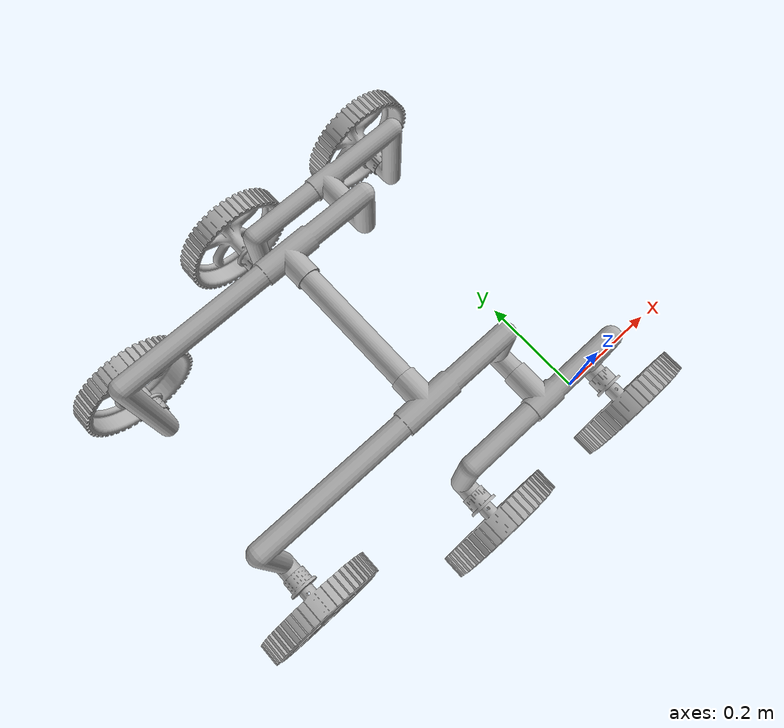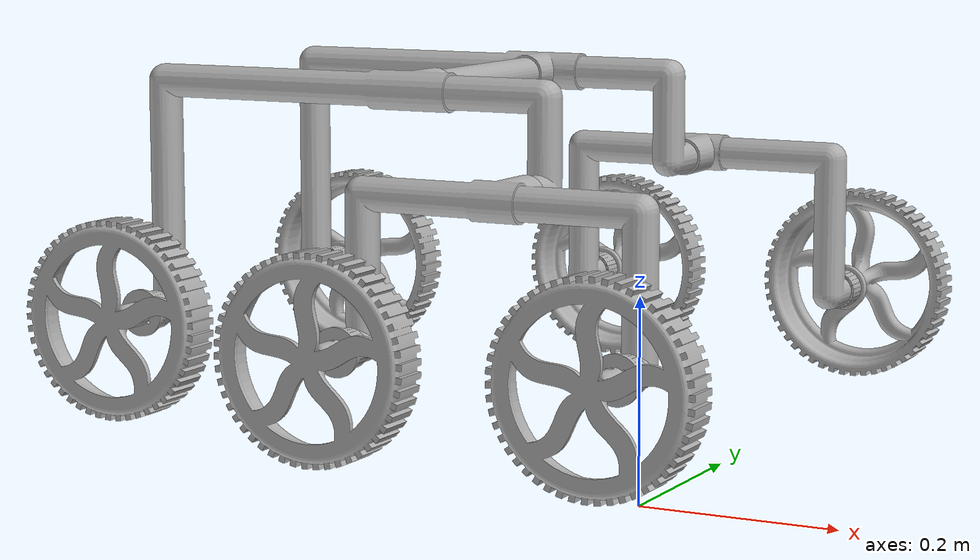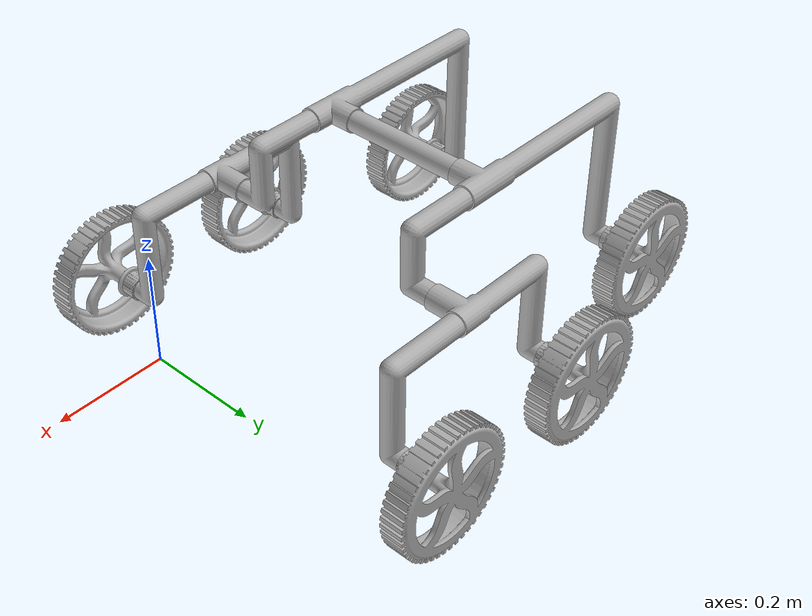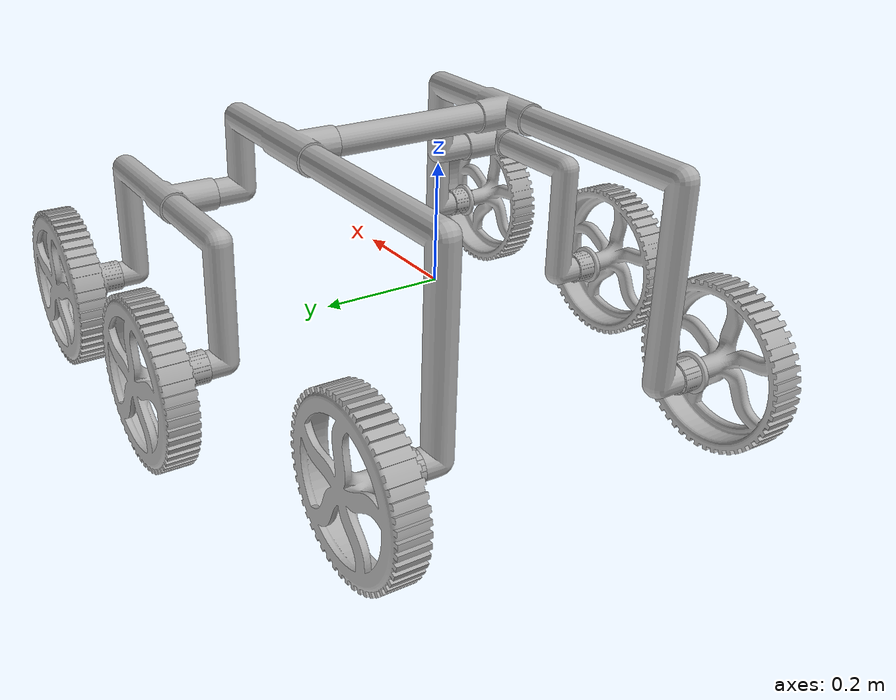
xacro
<?xml version="1.0" ?>
<robot name="rockerbogie-2" xmlns:xacro="http://www.ros.org/wiki/xacro">

<xacro:include filename="$(find rockerbogie-2_description)/urdf/materials.xacro" />
<xacro:include filename="$(find rockerbogie-2_description)/urdf/rockerbogie-2.trans" />
<xacro:include filename="$(find rockerbogie-2_description)/urdf/rockerbogie-2.gazebo" />
<link name="base_link">
  <inertial>
    <origin xyz="-0.3000000000000002 0.25000000000000017 0.37283900000000003" rpy="0 0 0"/>
    <mass value="1.5105170177541427"/>
    <inertia ixx="0.005151" iyy="0.000231" izz="0.005151" ixy="-0.0" iyz="0.0" ixz="-0.0"/>
  </inertial>
  <visual>
    <origin xyz="0 0 0" rpy="0 0 0"/>
    <geometry>
      <mesh filename="package://rockerbogie-2_description/meshes/base_link.stl" scale="0.001 0.001 0.001"/>
    </geometry>
    <material name="silver"/>
  </visual>
  <collision>
    <origin xyz="0 0 0" rpy="0 0 0"/>
    <geometry>
      <mesh filename="package://rockerbogie-2_description/meshes/base_link.stl" scale="0.001 0.001 0.001"/>
    </geometry>
  </collision>
</link>

<link name="Component3_1">
  <inertial>
    <origin xyz="-0.10755773674105329 -0.0509431809363807 -0.05038364965803355" rpy="0 0 0"/>
    <mass value="6.761143810780945"/>
    <inertia ixx="0.039352" iyy="0.245479" izz="0.207884" ixy="0.000261" iyz="-0.00115" ixz="-0.038842"/>
  </inertial>
  <visual>
    <origin xyz="0.3 -0.15 -0.372839" rpy="0 0 0"/>
    <geometry>
      <mesh filename="package://rockerbogie-2_description/meshes/Component3_1.stl" scale="0.001 0.001 0.001"/>
    </geometry>
    <material name="silver"/>
  </visual>
  <collision>
    <origin xyz="0.3 -0.15 -0.372839" rpy="0 0 0"/>
    <geometry>
      <mesh filename="package://rockerbogie-2_description/meshes/Component3_1.stl" scale="0.001 0.001 0.001"/>
    </geometry>
  </collision>
</link>

<link name="Component5_1">
  <inertial>
    <origin xyz="-0.10755774564451281 0.050943180848837144 -0.05038365391213556" rpy="0 0 0"/>
    <mass value="6.761143255231735"/>
    <inertia ixx="0.039352" iyy="0.245479" izz="0.207884" ixy="-0.000261" iyz="0.00115" ixz="-0.038842"/>
  </inertial>
  <visual>
    <origin xyz="0.3 -0.35 -0.372839" rpy="0 0 0"/>
    <geometry>
      <mesh filename="package://rockerbogie-2_description/meshes/Component5_1.stl" scale="0.001 0.001 0.001"/>
    </geometry>
    <material name="silver"/>
  </visual>
  <collision>
    <origin xyz="0.3 -0.35 -0.372839" rpy="0 0 0"/>
    <geometry>
      <mesh filename="package://rockerbogie-2_description/meshes/Component5_1.stl" scale="0.001 0.001 0.001"/>
    </geometry>
  </collision>
</link>

<link name="Component2_1">
  <inertial>
    <origin xyz="-8.481482183242406e-11 -0.060961453703470975 -0.0462653790905416" rpy="0 0 0"/>
    <mass value="5.234312053227132"/>
    <inertia ixx="0.018132" iyy="0.096288" izz="0.079777" ixy="-0.0" iyz="-0.001042" ixz="0.0"/>
  </inertial>
  <visual>
    <origin xyz="0.15 -0.06025 -0.279939" rpy="0 0 0"/>
    <geometry>
      <mesh filename="package://rockerbogie-2_description/meshes/Component2_1.stl" scale="0.001 0.001 0.001"/>
    </geometry>
    <material name="silver"/>
  </visual>
  <collision>
    <origin xyz="0.15 -0.06025 -0.279939" rpy="0 0 0"/>
    <geometry>
      <mesh filename="package://rockerbogie-2_description/meshes/Component2_1.stl" scale="0.001 0.001 0.001"/>
    </geometry>
  </collision>
</link>

<link name="Component4_1">
  <inertial>
    <origin xyz="0.0 0.06096145409995524 -0.046265384296076656" rpy="0 0 0"/>
    <mass value="5.23431144760391"/>
    <inertia ixx="0.018132" iyy="0.096288" izz="0.079777" ixy="0.0" iyz="0.001042" ixz="0.0"/>
  </inertial>
  <visual>
    <origin xyz="0.15 -0.43975 -0.279939" rpy="0 0 0"/>
    <geometry>
      <mesh filename="package://rockerbogie-2_description/meshes/Component4_1.stl" scale="0.001 0.001 0.001"/>
    </geometry>
    <material name="silver"/>
  </visual>
  <collision>
    <origin xyz="0.15 -0.43975 -0.279939" rpy="0 0 0"/>
    <geometry>
      <mesh filename="package://rockerbogie-2_description/meshes/Component4_1.stl" scale="0.001 0.001 0.001"/>
    </geometry>
  </collision>
</link>

<link name="wheel_initial_v1[1]_v2_1">
  <inertial>
    <origin xyz="2.965594800130589e-07 -0.043613044761228646 1.2825461553900297e-07" rpy="0 0 0"/>
    <mass value="3.397639562370722"/>
    <inertia ixx="0.013323" iyy="0.025608" izz="0.013323" ixy="0.0" iyz="0.0" ixz="0.0"/>
  </inertial>
  <visual>
    <origin xyz="0.0 0.054 -0.129939" rpy="0 0 0"/>
    <geometry>
      <mesh filename="package://rockerbogie-2_description/meshes/wheel_initial_v1[1]_v2_1.stl" scale="0.001 0.001 0.001"/>
    </geometry>
    <material name="silver"/>
  </visual>
  <collision>
    <origin xyz="0.0 0.054 -0.129939" rpy="0 0 0"/>
    <geometry>
      <mesh filename="package://rockerbogie-2_description/meshes/wheel_initial_v1[1]_v2_1.stl" scale="0.001 0.001 0.001"/>
    </geometry>
  </collision>
</link>

<link name="motor_holder2_v3[1]_v1_1">
  <inertial>
    <origin xyz="-1.4029074352933307e-15 -0.01805748319655863 0.0" rpy="0 0 0"/>
    <mass value="0.1300765489676125"/>
    <inertia ixx="3.4e-05" iyy="4.7e-05" izz="3.4e-05" ixy="-0.0" iyz="0.0" ixz="0.0"/>
  </inertial>
  <visual>
    <origin xyz="0.0 0.025 -0.129939" rpy="0 0 0"/>
    <geometry>
      <mesh filename="package://rockerbogie-2_description/meshes/motor_holder2_v3[1]_v1_1.stl" scale="0.001 0.001 0.001"/>
    </geometry>
    <material name="silver"/>
  </visual>
  <collision>
    <origin xyz="0.0 0.025 -0.129939" rpy="0 0 0"/>
    <geometry>
      <mesh filename="package://rockerbogie-2_description/meshes/motor_holder2_v3[1]_v1_1.stl" scale="0.001 0.001 0.001"/>
    </geometry>
  </collision>
</link>

<link name="motor_holder2_v3[1]_v1_3">
  <inertial>
    <origin xyz="-1.8318679906315083e-15 -0.018057483196557512 -2.7755575615628914e-17" rpy="0 0 0"/>
    <mass value="0.1300765489676125"/>
    <inertia ixx="3.4e-05" iyy="4.7e-05" izz="3.4e-05" ixy="-0.0" iyz="0.0" ixz="-0.0"/>
  </inertial>
  <visual>
    <origin xyz="0.3 0.025 -0.129939" rpy="0 0 0"/>
    <geometry>
      <mesh filename="package://rockerbogie-2_description/meshes/motor_holder2_v3[1]_v1_3.stl" scale="0.001 0.001 0.001"/>
    </geometry>
    <material name="silver"/>
  </visual>
  <collision>
    <origin xyz="0.3 0.025 -0.129939" rpy="0 0 0"/>
    <geometry>
      <mesh filename="package://rockerbogie-2_description/meshes/motor_holder2_v3[1]_v1_3.stl" scale="0.001 0.001 0.001"/>
    </geometry>
  </collision>
</link>

<link name="motor_holder2_v3[1]_v1_4">
  <inertial>
    <origin xyz="1.7165016580788909e-15 0.018057483196558866 0.0" rpy="0 0 0"/>
    <mass value="0.1300765489676125"/>
    <inertia ixx="3.4e-05" iyy="4.7e-05" izz="3.4e-05" ixy="-0.0" iyz="0.0" ixz="-0.0"/>
  </inertial>
  <visual>
    <origin xyz="-0.0 -0.525 -0.129939" rpy="0 0 0"/>
    <geometry>
      <mesh filename="package://rockerbogie-2_description/meshes/motor_holder2_v3[1]_v1_4.stl" scale="0.001 0.001 0.001"/>
    </geometry>
    <material name="silver"/>
  </visual>
  <collision>
    <origin xyz="-0.0 -0.525 -0.129939" rpy="0 0 0"/>
    <geometry>
      <mesh filename="package://rockerbogie-2_description/meshes/motor_holder2_v3[1]_v1_4.stl" scale="0.001 0.001 0.001"/>
    </geometry>
  </collision>
</link>

<link name="motor_holder2_v3[1]_v1_5">
  <inertial>
    <origin xyz="9.43689570931383e-16 0.01805748319656575 0.0" rpy="0 0 0"/>
    <mass value="0.1300765489676125"/>
    <inertia ixx="3.4e-05" iyy="4.7e-05" izz="3.4e-05" ixy="-0.0" iyz="0.0" ixz="0.0"/>
  </inertial>
  <visual>
    <origin xyz="0.3 -0.525 -0.129939" rpy="0 0 0"/>
    <geometry>
      <mesh filename="package://rockerbogie-2_description/meshes/motor_holder2_v3[1]_v1_5.stl" scale="0.001 0.001 0.001"/>
    </geometry>
    <material name="silver"/>
  </visual>
  <collision>
    <origin xyz="0.3 -0.525 -0.129939" rpy="0 0 0"/>
    <geometry>
      <mesh filename="package://rockerbogie-2_description/meshes/motor_holder2_v3[1]_v1_5.stl" scale="0.001 0.001 0.001"/>
    </geometry>
  </collision>
</link>

<link name="motor_holder2_v3[1]_v1_6">
  <inertial>
    <origin xyz="-1.5543122344752192e-15 -0.018057483196556187 -8.326672684688674e-17" rpy="0 0 0"/>
    <mass value="0.1300765489676125"/>
    <inertia ixx="3.4e-05" iyy="4.7e-05" izz="3.4e-05" ixy="0.0" iyz="-0.0" ixz="0.0"/>
  </inertial>
  <visual>
    <origin xyz="0.6 -0.075 -0.129939" rpy="0 0 0"/>
    <geometry>
      <mesh filename="package://rockerbogie-2_description/meshes/motor_holder2_v3[1]_v1_6.stl" scale="0.001 0.001 0.001"/>
    </geometry>
    <material name="silver"/>
  </visual>
  <collision>
    <origin xyz="0.6 -0.075 -0.129939" rpy="0 0 0"/>
    <geometry>
      <mesh filename="package://rockerbogie-2_description/meshes/motor_holder2_v3[1]_v1_6.stl" scale="0.001 0.001 0.001"/>
    </geometry>
  </collision>
</link>

<link name="motor_holder2_v3[1]_v1_8">
  <inertial>
    <origin xyz="3.219646771412954e-15 0.018057483196558755 0.0" rpy="0 0 0"/>
    <mass value="0.1300765489676125"/>
    <inertia ixx="3.4e-05" iyy="4.7e-05" izz="3.4e-05" ixy="0.0" iyz="-0.0" ixz="0.0"/>
  </inertial>
  <visual>
    <origin xyz="0.6 -0.425 -0.129939" rpy="0 0 0"/>
    <geometry>
      <mesh filename="package://rockerbogie-2_description/meshes/motor_holder2_v3[1]_v1_8.stl" scale="0.001 0.001 0.001"/>
    </geometry>
    <material name="silver"/>
  </visual>
  <collision>
    <origin xyz="0.6 -0.425 -0.129939" rpy="0 0 0"/>
    <geometry>
      <mesh filename="package://rockerbogie-2_description/meshes/motor_holder2_v3[1]_v1_8.stl" scale="0.001 0.001 0.001"/>
    </geometry>
  </collision>
</link>

<link name="wheel_initial_v1[1]_v2_2">
  <inertial>
    <origin xyz="2.965594796955351e-07 -0.04361304476122853 1.282546155112474e-07" rpy="0 0 0"/>
    <mass value="3.397639562370722"/>
    <inertia ixx="0.013323" iyy="0.025608" izz="0.013323" ixy="0.0" iyz="0.0" ixz="0.0"/>
  </inertial>
  <visual>
    <origin xyz="0.3 0.05 -0.129939" rpy="0 0 0"/>
    <geometry>
      <mesh filename="package://rockerbogie-2_description/meshes/wheel_initial_v1[1]_v2_2.stl" scale="0.001 0.001 0.001"/>
    </geometry>
    <material name="silver"/>
  </visual>
  <collision>
    <origin xyz="0.3 0.05 -0.129939" rpy="0 0 0"/>
    <geometry>
      <mesh filename="package://rockerbogie-2_description/meshes/wheel_initial_v1[1]_v2_2.stl" scale="0.001 0.001 0.001"/>
    </geometry>
  </collision>
</link>

<link name="wheel_initial_v1[1]_v2_3">
  <inertial>
    <origin xyz="-2.965594790094173e-07 0.04361304476122885 1.2825461553900297e-07" rpy="0 0 0"/>
    <mass value="3.397639562370722"/>
    <inertia ixx="0.013323" iyy="0.025608" izz="0.013323" ixy="0.0" iyz="-0.0" ixz="-0.0"/>
  </inertial>
  <visual>
    <origin xyz="-0.0 -0.554 -0.129939" rpy="0 0 0"/>
    <geometry>
      <mesh filename="package://rockerbogie-2_description/meshes/wheel_initial_v1[1]_v2_3.stl" scale="0.001 0.001 0.001"/>
    </geometry>
    <material name="silver"/>
  </visual>
  <collision>
    <origin xyz="-0.0 -0.554 -0.129939" rpy="0 0 0"/>
    <geometry>
      <mesh filename="package://rockerbogie-2_description/meshes/wheel_initial_v1[1]_v2_3.stl" scale="0.001 0.001 0.001"/>
    </geometry>
  </collision>
</link>

<link name="wheel_initial_v1[1]_v2_4">
  <inertial>
    <origin xyz="-2.9655947836326746e-07 0.04361304476123595 1.2825461553900297e-07" rpy="0 0 0"/>
    <mass value="3.397639562370722"/>
    <inertia ixx="0.013323" iyy="0.025608" izz="0.013323" ixy="0.0" iyz="-0.0" ixz="-0.0"/>
  </inertial>
  <visual>
    <origin xyz="0.3 -0.554 -0.129939" rpy="0 0 0"/>
    <geometry>
      <mesh filename="package://rockerbogie-2_description/meshes/wheel_initial_v1[1]_v2_4.stl" scale="0.001 0.001 0.001"/>
    </geometry>
    <material name="silver"/>
  </visual>
  <collision>
    <origin xyz="0.3 -0.554 -0.129939" rpy="0 0 0"/>
    <geometry>
      <mesh filename="package://rockerbogie-2_description/meshes/wheel_initial_v1[1]_v2_4.stl" scale="0.001 0.001 0.001"/>
    </geometry>
  </collision>
</link>

<link name="wheel_initial_v1[1]_v2_5">
  <inertial>
    <origin xyz="2.9655947997309084e-07 -0.043613044761225926 1.2825461542798067e-07" rpy="0 0 0"/>
    <mass value="3.397639562370722"/>
    <inertia ixx="0.013323" iyy="0.025608" izz="0.013323" ixy="0.0" iyz="0.0" ixz="0.0"/>
  </inertial>
  <visual>
    <origin xyz="0.6 -0.046 -0.129939" rpy="0 0 0"/>
    <geometry>
      <mesh filename="package://rockerbogie-2_description/meshes/wheel_initial_v1[1]_v2_5.stl" scale="0.001 0.001 0.001"/>
    </geometry>
    <material name="silver"/>
  </visual>
  <collision>
    <origin xyz="0.6 -0.046 -0.129939" rpy="0 0 0"/>
    <geometry>
      <mesh filename="package://rockerbogie-2_description/meshes/wheel_initial_v1[1]_v2_5.stl" scale="0.001 0.001 0.001"/>
    </geometry>
  </collision>
</link>

<link name="wheel_initial_v1[1]_v2_6">
  <inertial>
    <origin xyz="-2.9655947564322105e-07 0.043613044761229236 1.282546155112474e-07" rpy="0 0 0"/>
    <mass value="3.397639562370722"/>
    <inertia ixx="0.013323" iyy="0.025608" izz="0.013323" ixy="0.0" iyz="-0.0" ixz="-0.0"/>
  </inertial>
  <visual>
    <origin xyz="0.6 -0.454 -0.129939" rpy="0 0 0"/>
    <geometry>
      <mesh filename="package://rockerbogie-2_description/meshes/wheel_initial_v1[1]_v2_6.stl" scale="0.001 0.001 0.001"/>
    </geometry>
    <material name="silver"/>
  </visual>
  <collision>
    <origin xyz="0.6 -0.454 -0.129939" rpy="0 0 0"/>
    <geometry>
      <mesh filename="package://rockerbogie-2_description/meshes/wheel_initial_v1[1]_v2_6.stl" scale="0.001 0.001 0.001"/>
    </geometry>
  </collision>
</link>

<joint name="Revolute 1" type="continuous">
  <origin xyz="-0.3 0.15 0.372839" rpy="0 0 0"/>
  <parent link="base_link"/>
  <child link="Component3_1"/>
  <axis xyz="-0.0 -1.0 0.0"/>
</joint>

<joint name="Revolute 2" type="continuous">
  <origin xyz="-0.3 0.35 0.372839" rpy="0 0 0"/>
  <parent link="base_link"/>
  <child link="Component5_1"/>
  <axis xyz="0.0 1.0 -0.0"/>
</joint>

<joint name="Revolute 3" type="continuous">
  <origin xyz="0.15 -0.08975 -0.0929" rpy="0 0 0"/>
  <parent link="Component3_1"/>
  <child link="Component2_1"/>
  <axis xyz="-0.0 -1.0 0.0"/>
</joint>

<joint name="Revolute 4" type="continuous">
  <origin xyz="0.15 0.08975 -0.0929" rpy="0 0 0"/>
  <parent link="Component5_1"/>
  <child link="Component4_1"/>
  <axis xyz="0.0 1.0 -0.0"/>
</joint>

<joint name="Revolute 5" type="continuous">
  <origin xyz="0.0 -0.029 0.0" rpy="0 0 0"/>
  <parent link="motor_holder2_v3[1]_v1_1"/>
  <child link="wheel_initial_v1[1]_v2_1"/>
  <axis xyz="-0.0 -1.0 -0.0"/>
</joint>

<joint name="Rigid 6" type="fixed">
  <origin xyz="0.15 -0.08525 -0.15" rpy="0 0 0"/>
  <parent link="Component2_1"/>
  <child link="motor_holder2_v3[1]_v1_1"/>
</joint>

<joint name="Rigid 7" type="fixed">
  <origin xyz="-0.15 -0.08525 -0.15" rpy="0 0 0"/>
  <parent link="Component2_1"/>
  <child link="motor_holder2_v3[1]_v1_3"/>
</joint>

<joint name="Rigid 8" type="fixed">
  <origin xyz="0.15 0.08525 -0.15" rpy="0 0 0"/>
  <parent link="Component4_1"/>
  <child link="motor_holder2_v3[1]_v1_4"/>
</joint>

<joint name="Rigid 9" type="fixed">
  <origin xyz="-0.15 0.08525 -0.15" rpy="0 0 0"/>
  <parent link="Component4_1"/>
  <child link="motor_holder2_v3[1]_v1_5"/>
</joint>

<joint name="Rigid 10" type="fixed">
  <origin xyz="-0.3 -0.075 -0.2429" rpy="0 0 0"/>
  <parent link="Component3_1"/>
  <child link="motor_holder2_v3[1]_v1_6"/>
</joint>

<joint name="Rigid 11" type="fixed">
  <origin xyz="-0.3 0.075 -0.2429" rpy="0 0 0"/>
  <parent link="Component5_1"/>
  <child link="motor_holder2_v3[1]_v1_8"/>
</joint>

<joint name="Revolute 12" type="continuous">
  <origin xyz="-0.15 -0.11025 -0.15" rpy="0 0 0"/>
  <parent link="Component2_1"/>
  <child link="wheel_initial_v1[1]_v2_2"/>
  <axis xyz="0.0 1.0 -0.0"/>
</joint>

<joint name="Revolute 13" type="continuous">
  <origin xyz="0.0 0.029 0.0" rpy="0 0 0"/>
  <parent link="motor_holder2_v3[1]_v1_4"/>
  <child link="wheel_initial_v1[1]_v2_3"/>
  <axis xyz="0.0 1.0 -0.0"/>
</joint>

<joint name="Revolute 14" type="continuous">
  <origin xyz="0.0 0.029 0.0" rpy="0 0 0"/>
  <parent link="motor_holder2_v3[1]_v1_5"/>
  <child link="wheel_initial_v1[1]_v2_4"/>
  <axis xyz="0.0 1.0 -0.0"/>
</joint>

<joint name="Revolute 15" type="continuous">
  <origin xyz="0.0 -0.029 0.0" rpy="0 0 0"/>
  <parent link="motor_holder2_v3[1]_v1_6"/>
  <child link="wheel_initial_v1[1]_v2_5"/>
  <axis xyz="-0.0 -1.0 -0.0"/>
</joint>

<joint name="Revolute 16" type="continuous">
  <origin xyz="0.0 0.029 0.0" rpy="0 0 0"/>
  <parent link="motor_holder2_v3[1]_v1_8"/>
  <child link="wheel_initial_v1[1]_v2_6"/>
  <axis xyz="0.0 1.0 -0.0"/>
</joint>

</robot>

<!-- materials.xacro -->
<robot name="rockerbogie-2" xmlns:xacro="http://www.ros.org/wiki/xacro" >

<material name="silver">
  <color rgba="0.700 0.700 0.700 1.000"/>
</material>

</robot>

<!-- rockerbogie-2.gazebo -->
<robot name="rockerbogie-2" xmlns:xacro="http://www.ros.org/wiki/xacro" >

<xacro:property name="body_color" value="Gazebo/Silver" />

<gazebo>
  <plugin name="control" filename="libgazebo_ros_control.so"/>
</gazebo>
<gazebo reference="base_link">
  <material>${body_color}</material>
  <mu1>0.2</mu1>
  <mu2>0.2</mu2>
  <selfCollide>true</selfCollide>
  <gravity>true</gravity>
</gazebo>

<gazebo reference="Component3_1">
  <material>${body_color}</material>
  <mu1>0.2</mu1>
  <mu2>0.2</mu2>
  <selfCollide>true</selfCollide>
</gazebo>

<gazebo reference="Component5_1">
  <material>${body_color}</material>
  <mu1>0.2</mu1>
  <mu2>0.2</mu2>
  <selfCollide>true</selfCollide>
</gazebo>

<gazebo reference="Component2_1">
  <material>${body_color}</material>
  <mu1>0.2</mu1>
  <mu2>0.2</mu2>
  <selfCollide>true</selfCollide>
</gazebo>

<gazebo reference="Component4_1">
  <material>${body_color}</material>
  <mu1>0.2</mu1>
  <mu2>0.2</mu2>
  <selfCollide>true</selfCollide>
</gazebo>

<gazebo reference="wheel_initial_v1[1]_v2_1">
  <material>${body_color}</material>
  <mu1>0.2</mu1>
  <mu2>0.2</mu2>
  <selfCollide>true</selfCollide>
</gazebo>

<gazebo reference="motor_holder2_v3[1]_v1_1">
  <material>${body_color}</material>
  <mu1>0.2</mu1>
  <mu2>0.2</mu2>
  <selfCollide>true</selfCollide>
</gazebo>

<gazebo reference="motor_holder2_v3[1]_v1_3">
  <material>${body_color}</material>
  <mu1>0.2</mu1>
  <mu2>0.2</mu2>
  <selfCollide>true</selfCollide>
</gazebo>

<gazebo reference="motor_holder2_v3[1]_v1_4">
  <material>${body_color}</material>
  <mu1>0.2</mu1>
  <mu2>0.2</mu2>
  <selfCollide>true</selfCollide>
</gazebo>

<gazebo reference="motor_holder2_v3[1]_v1_5">
  <material>${body_color}</material>
  <mu1>0.2</mu1>
  <mu2>0.2</mu2>
  <selfCollide>true</selfCollide>
</gazebo>

<gazebo reference="motor_holder2_v3[1]_v1_6">
  <material>${body_color}</material>
  <mu1>0.2</mu1>
  <mu2>0.2</mu2>
  <selfCollide>true</selfCollide>
</gazebo>

<gazebo reference="motor_holder2_v3[1]_v1_8">
  <material>${body_color}</material>
  <mu1>0.2</mu1>
  <mu2>0.2</mu2>
  <selfCollide>true</selfCollide>
</gazebo>

<gazebo reference="wheel_initial_v1[1]_v2_2">
  <material>${body_color}</material>
  <mu1>0.2</mu1>
  <mu2>0.2</mu2>
  <selfCollide>true</selfCollide>
</gazebo>

<gazebo reference="wheel_initial_v1[1]_v2_3">
  <material>${body_color}</material>
  <mu1>0.2</mu1>
  <mu2>0.2</mu2>
  <selfCollide>true</selfCollide>
</gazebo>

<gazebo reference="wheel_initial_v1[1]_v2_4">
  <material>${body_color}</material>
  <mu1>0.2</mu1>
  <mu2>0.2</mu2>
  <selfCollide>true</selfCollide>
</gazebo>

<gazebo reference="wheel_initial_v1[1]_v2_5">
  <material>${body_color}</material>
  <mu1>0.2</mu1>
  <mu2>0.2</mu2>
  <selfCollide>true</selfCollide>
</gazebo>

<gazebo reference="wheel_initial_v1[1]_v2_6">
  <material>${body_color}</material>
  <mu1>0.2</mu1>
  <mu2>0.2</mu2>
  <selfCollide>true</selfCollide>
</gazebo>

</robot>
